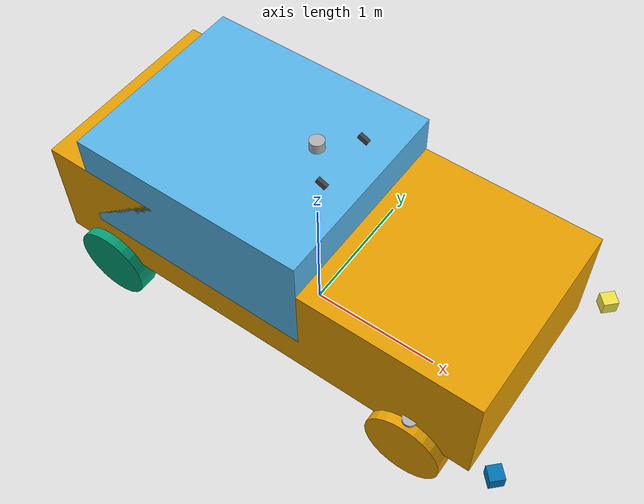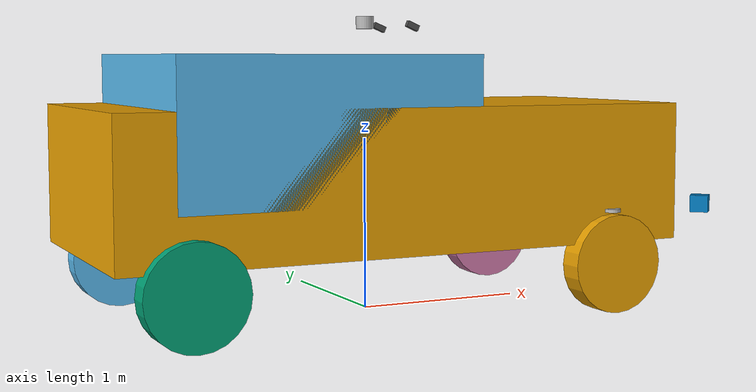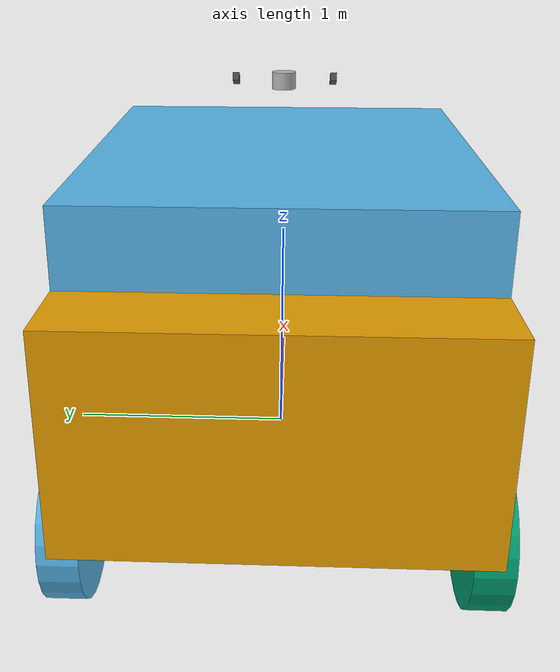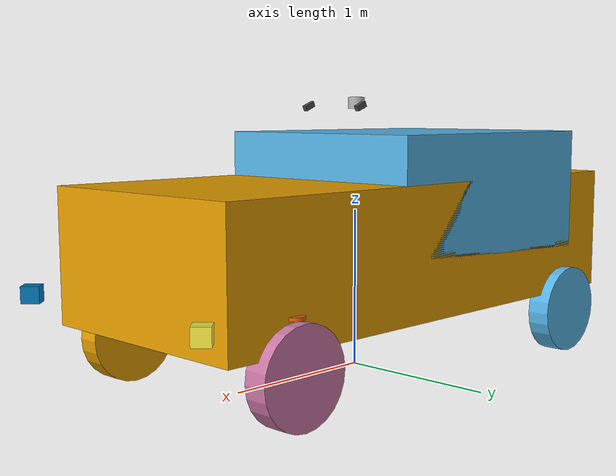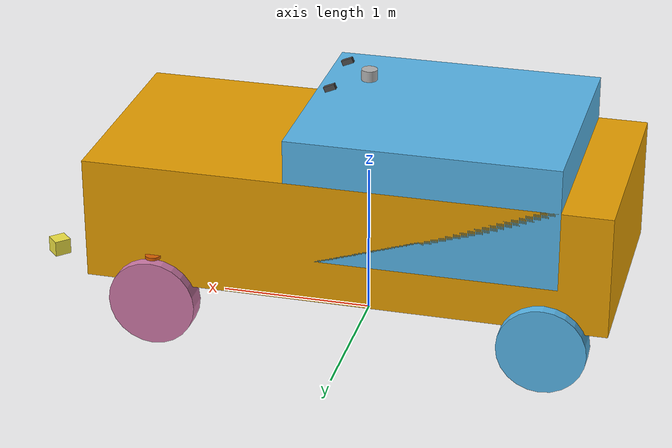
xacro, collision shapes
<?xml version="1.0" ?>
<robot name="atlascar2" version="1.0">
  <link name="base_link">
    <inertial>
      <origin xyz="0.0 0.0 0.0" rpy="0.0 0.0 0.0"/>
      <mass value="2.0"/>
      <inertia ixx="1.0" ixy="0.0" ixz="0.0" iyy="1.0" iyz="0.0" izz="1.0"/>
    </inertial>
    <visual>
      <origin xyz="1.7375 -0.8875000000000001 -0.235" rpy="0.0 0.0 1.5707963267948966"/>
      <geometry>
        <mesh filename="file:////home/nel/catkin_ws/src/calibration/robots/atlascar2/atlascar2_description/meshes/atlascar2_nowheels.dae"/>
      </geometry>
    </visual>
    <collision>
      <origin xyz="0.0 0.0 0.52" rpy="0 0 0"/>
      <geometry>
        <box size="3.375 1.475 0.805"/>
      </geometry>
    </collision>
  </link>
  <link name="top_collision">
    <collision>
      <origin xyz="-0.49642857142857144 0.0 0.0" rpy="0 0 0"/>
      <geometry>
        <box size="1.7375 1.475 0.805"/>
      </geometry>
    </collision>
  </link>
  <joint name="base_link_to_top_collision" type="fixed">
    <origin xyz="0.0 0.0 0.805" rpy="0.0 0.0 0.0"/>
    <parent link="base_link"/>
    <child link="top_collision"/>
  </joint>
  <link name="base_footprint">
    <collision>
      <origin xyz="0.0 0.0 0.0" rpy="0 0 0"/>
      <geometry>
        <sphere radius="1e-08"/>
      </geometry>
    </collision>
  </link>
  <joint name="base_footprint_joint" type="fixed">
    <origin xyz="0.0 0.0 0.285" rpy="0.0 0.0 0.0"/>
    <parent link="base_footprint"/>
    <child link="base_link"/>
  </joint>
  <link name="top_right_camera">
    <inertial>
      <mass value="0.085"/>
      <inertia ixx="1e-06" ixy="0.0" ixz="0.0" iyy="1e-06" iyz="0.0" izz="1e-06"/>
    </inertial>
    <visual>
      <origin xyz="0.0 0.0 0.0" rpy="0.0 0.0 0.0"/>
      <geometry>
        <box size="0.0754 0.029 0.035"/>
      </geometry>
      <material name="dark_grey"/>
    </visual>
    <collision>
      <origin xyz="0.0 0.0 0.0" rpy="0.0 0.0 0.0"/>
      <geometry>
        <box size="0.0754 0.029 0.035"/>
      </geometry>
    </collision>
  </link>
  <link name="top_right_camera_optical"/>
  <joint name="top_right_camera_optical_joint" type="fixed">
    <origin xyz="0.0 0.0 0.0" rpy="-1.570796 0.0 -1.570796"/>
    <parent link="top_right_camera"/>
    <child link="top_right_camera_optical"/>
  </joint>
  <gazebo reference="top_right_camera_optical">
    <material>Gazebo/Grey</material>
    <sensor name="top_right_camera" type="camera">
      <update_rate>120</update_rate>
      <camera name="top_right_camera">
        <pose>0 0 0 0 -1.5707 1.5707</pose>
        <horizontal_fov>1.0471975512</horizontal_fov>
        <image>
          <width>1272</width>
          <height>1016</height>
          <format>R8G8B8</format>
        </image>
        <clip>
          <near>0.5</near>
          <far>300</far>
        </clip>
        <noise>
          <type>gaussian</type>
          <mean>0.0</mean>
          <stddev>0.007</stddev>
        </noise>
      </camera>
      <plugin filename="libgazebo_ros_camera.so" name="camera_controller">
        <alwaysOn>true</alwaysOn>
        <updateRate>120</updateRate>
        <cameraName>top_right_camera</cameraName>
        <imageTopicName>image_raw</imageTopicName>
        <cameraInfoTopicName>camera_info</cameraInfoTopicName>
        <frameName>top_right_camera_optical</frameName>
        <hackBaseline>0.07</hackBaseline>
        <distortionK1>0.0</distortionK1>
        <distortionK2>0.0</distortionK2>
        <distortionK3>0.0</distortionK3>
        <distortionT1>0.0</distortionT1>
        <distortionT2>0.0</distortionT2>
      </plugin>
    </sensor>
  </gazebo>
  <joint name="{parent}_to_top_right_camera" type="fixed">
    <origin xyz="0.2001221309726634 -0.21610799787967408 1.3694008135553515" rpy="-0.00033517103954637626 0.4008436654743302 -0.00044685990488837183"/>
    <parent link="base_link"/>
    <child link="top_right_camera"/>
  </joint>
  <link name="top_left_camera">
    <inertial>
      <mass value="0.085"/>
      <inertia ixx="1e-06" ixy="0.0" ixz="0.0" iyy="1e-06" iyz="0.0" izz="1e-06"/>
    </inertial>
    <visual>
      <origin xyz="0.0 0.0 0.0" rpy="0.0 0.0 0.0"/>
      <geometry>
        <box size="0.0754 0.029 0.035"/>
      </geometry>
      <material name="dark_grey"/>
    </visual>
    <collision>
      <origin xyz="0.0 0.0 0.0" rpy="0.0 0.0 0.0"/>
      <geometry>
        <box size="0.0754 0.029 0.035"/>
      </geometry>
    </collision>
  </link>
  <link name="top_left_camera_optical"/>
  <joint name="top_left_camera_optical_joint" type="fixed">
    <origin xyz="0.0 0.0 0.0" rpy="-1.570796 0.0 -1.570796"/>
    <parent link="top_left_camera"/>
    <child link="top_left_camera_optical"/>
  </joint>
  <gazebo reference="top_left_camera_optical">
    <material>Gazebo/Grey</material>
    <sensor name="top_left_camera" type="camera">
      <update_rate>120</update_rate>
      <camera name="top_left_camera">
        <pose>0 0 0 0 -1.5707 1.5707</pose>
        <horizontal_fov>1.0471975512</horizontal_fov>
        <image>
          <width>1272</width>
          <height>1016</height>
          <format>R8G8B8</format>
        </image>
        <clip>
          <near>0.5</near>
          <far>300</far>
        </clip>
        <noise>
          <type>gaussian</type>
          <mean>0.0</mean>
          <stddev>0.007</stddev>
        </noise>
      </camera>
      <plugin filename="libgazebo_ros_camera.so" name="camera_controller">
        <alwaysOn>true</alwaysOn>
        <updateRate>120</updateRate>
        <cameraName>top_left_camera</cameraName>
        <imageTopicName>image_raw</imageTopicName>
        <cameraInfoTopicName>camera_info</cameraInfoTopicName>
        <frameName>top_left_camera_optical</frameName>
        <hackBaseline>0.07</hackBaseline>
        <distortionK1>0.0</distortionK1>
        <distortionK2>0.0</distortionK2>
        <distortionK3>0.0</distortionK3>
        <distortionT1>0.0</distortionT1>
        <distortionT2>0.0</distortionT2>
      </plugin>
    </sensor>
  </gazebo>
  <joint name="{parent}_to_top_left_camera" type="fixed">
    <origin xyz="0.20154699446691582 0.22553233689317445 1.368941444270171" rpy="-0.00033785773814485546 0.400753678202867 -0.0010168019601629586"/>
    <parent link="base_link"/>
    <child link="top_left_camera"/>
  </joint>
  <joint name="top_laser_base_mount_joint" type="fixed">
    <origin xyz="0.0018114097858342693 0.006131485845022701 1.3555173396460185" rpy="0.0010523513027342205 -0.004039523504586624 -0.0014120572320113396"/>
    <parent link="base_link"/>
    <child link="top_laser_base_link"/>
  </joint>
  <link name="top_laser_base_link">
    <inertial>
      <origin xyz="0.0 0.0 0.03585" rpy="0 0 0"/>
      <mass value="0.83"/>
      <inertia ixx="0.000908059425" ixy="0.0" ixz="0.0" iyy="0.000908059425" iyz="0.0" izz="0.0011049624"/>
    </inertial>
    <visual>
      <geometry>
        <mesh filename="package://velodyne_description/meshes/VLP16_base_1.dae"/>
      </geometry>
    </visual>
    <visual>
      <geometry>
        <mesh filename="package://velodyne_description/meshes/VLP16_base_2.dae"/>
      </geometry>
    </visual>
    <collision>
      <origin xyz="0.0 0.0 0.03585" rpy="0.0 0.0 0.0"/>
      <geometry>
        <cylinder radius="0.0516" length="0.0717"/>
      </geometry>
    </collision>
  </link>
  <joint name="top_laser_base_scan_joint" type="fixed">
    <origin xyz="0.0 0.0 0.0377" rpy="0.0 0.0 0.0"/>
    <parent link="top_laser_base_link"/>
    <child link="top_laser"/>
  </joint>
  <link name="top_laser">
    <inertial>
      <origin xyz="0.0 0.0 0.0" rpy="0 0 0"/>
      <mass value="0.01"/>
      <inertia ixx="1e-07" ixy="0.0" ixz="0.0" iyy="1e-07" iyz="0.0" izz="1e-07"/>
    </inertial>
    <visual>
      <origin xyz="0.0 0.0 -0.0377" rpy="0 0 0"/>
      <geometry>
        <mesh filename="package://velodyne_description/meshes/VLP16_scan.dae"/>
      </geometry>
    </visual>
  </link>
  <gazebo reference="top_laser">
    <sensor name="top_laser-VLP16" type="ray">
      <pose>0 0 0 0 0 0</pose>
      <visualize>false</visualize>
      <update_rate>10</update_rate>
      <ray>
        <scan>
          <horizontal>
            <samples>1875</samples>
            <resolution>1</resolution>
            <min_angle>-3.141592653589793</min_angle>
            <max_angle>3.141592653589793</max_angle>
          </horizontal>
          <vertical>
            <samples>16</samples>
            <resolution>1</resolution>
            <min_angle>-0.2617993877991494</min_angle>
            <max_angle> 0.2617993877991494</max_angle>
          </vertical>
        </scan>
        <range>
          <min>0.3</min>
          <max>131.0</max>
          <resolution>0.001</resolution>
        </range>
        <noise>
          <type>gaussian</type>
          <mean>0.0</mean>
          <stddev>0.0</stddev>
        </noise>
      </ray>
      <plugin filename="libgazebo_ros_velodyne_laser.so" name="gazebo_ros_laser_controller">
        <topicName>top_laser/cloud</topicName>
        <frameName>top_laser</frameName>
        <organize_cloud>False</organize_cloud>
        <min_range>0.9</min_range>
        <max_range>130.0</max_range>
        <gaussianNoise>0.008</gaussianNoise>
      </plugin>
    </sensor>
  </gazebo>
  <link name="front_steer_link">
    <inertial>
      <origin xyz="0.0 0.0 0.0" rpy="0.0 0.0 0.0"/>
      <mass value="0.3"/>
      <inertia ixx="0.02" ixy="0.0" ixz="0.0" iyy="0.002" iyz="0.0" izz="0.02"/>
    </inertial>
    <collision>
      <origin xyz="0.0 0.0 0.0" rpy="0.0 0.0 0.0"/>
      <geometry>
        <cylinder radius="0.05" length="0.02"/>
      </geometry>
    </collision>
  </link>
  <joint name="front_steer_joint" type="revolute">
    <origin xyz="1.2375 0.0 0.305" rpy="0.0 0.0 0.0"/>
    <axis xyz="0.0 0.0 1.0"/>
    <parent link="base_link"/>
    <child link="front_steer_link"/>
    <limit effort="15.0" lower="-3.141592653589793" upper="3.141592653589793" velocity="5.0"/>
    <dynamics damping="0.0" friction="0.0"/>
  </joint>
  <transmission name="front_steer_joint_trans">
    <type>transmission_interface/SimpleTransmission</type>
    <actuator name="front_steer_joint_motor"/>
    <joint name="front_steer_joint">
      <hardwareInterface>hardware_interface/PositionJointInterface</hardwareInterface>
    </joint>
  </transmission>
  <gazebo reference="front_steer_link">
    <material>Gazebo/Yellow</material>
  </gazebo>
  <link name="rear_wheel_link">
    <inertial>
      <origin xyz="0.0 0.0 0.0" rpy="0.0 0.0 0.0"/>
      <mass value="0.3"/>
      <inertia ixx="0.02" ixy="0.0" ixz="0.0" iyy="0.002" iyz="0.0" izz="0.02"/>
    </inertial>
    <collision>
      <origin xyz="0.0 0.0 0.0" rpy="0.0 0.0 0.0"/>
      <geometry>
        <cylinder radius="0.0028499999999999997" length="0.00145"/>
      </geometry>
    </collision>
  </link>
  <joint name="rear_wheel_joint" type="continuous">
    <origin xyz="-1.2375 0.0 0.0" rpy="-1.5707963267948966 0.0 -1.5707963267948966"/>
    <axis xyz="1.0 0.0 0.0"/>
    <parent link="base_link"/>
    <child link="rear_wheel_link"/>
    <dynamics damping="0.0" friction="0.0"/>
  </joint>
  <transmission name="rear_wheel_joint_trans">
    <type>transmission_interface/SimpleTransmission</type>
    <actuator name="rear_wheel_joint_motor"/>
    <joint name="rear_wheel_joint">
      <hardwareInterface>hardware_interface/VelocityJointInterface</hardwareInterface>
    </joint>
  </transmission>
  <link name="left_laser">
    <inertial>
      <origin xyz="0.0 0.0 0.0" rpy="0 0 0"/>
      <mass value="1.1"/>
      <inertia ixx="0.00307156543804" ixy="0.0" ixz="0.0" iyy="0.0031284904152700005" iyz="0.0" izz="0.00196432421427"/>
    </inertial>
    <visual>
      <origin xyz="0.0 0.0 0.0" rpy="0.0 0.0 0.0"/>
      <geometry>
        <mesh filename="package://lms1xx/meshes/sick-lms1xx.dae"/>
      </geometry>
    </visual>
    <collision>
      <origin xyz="0.0 0.0 -0.05" rpy="0.0 0.0 0.0"/>
      <geometry>
        <box size="0.105 0.1 0.1"/>
      </geometry>
    </collision>
  </link>
  <gazebo reference="left_laser">
    <turnGravityOff>true</turnGravityOff>
    <sensor name="left_laser" type="ray">
      <pose>0 0 0 0 0 0</pose>
      <visualize>false</visualize>
      <update_rate>50</update_rate>
      <ray>
        <scan>
          <horizontal>
            <samples>720</samples>
            <resolution>1</resolution>
            <min_angle>-2.35619</min_angle>
            <max_angle>2.35619</max_angle>
          </horizontal>
        </scan>
        <range>
          <min>0.1</min>
          <max>30.0</max>
          <resolution>0.01</resolution>
        </range>
        <noise>
          <type>gaussian</type>
          <mean>0.0</mean>
          <stddev>0.001</stddev>
        </noise>
      </ray>
      <plugin filename="libgazebo_ros_laser.so" name="gazebo_ros_laser">
        <topicName>/left_laser/scan</topicName>
        <frameName>left_laser</frameName>
        <robotNamespace>/</robotNamespace>
      </plugin>
    </sensor>
  </gazebo>
  <joint name="{parent}_to_left_laser" type="fixed">
    <origin xyz="1.8575 0.76 0.37" rpy="0.0 0.0 0.7854"/>
    <parent link="base_link"/>
    <child link="left_laser"/>
  </joint>
  <link name="right_laser">
    <inertial>
      <origin xyz="0.0 0.0 0.0" rpy="0 0 0"/>
      <mass value="1.1"/>
      <inertia ixx="0.00307156543804" ixy="0.0" ixz="0.0" iyy="0.0031284904152700005" iyz="0.0" izz="0.00196432421427"/>
    </inertial>
    <visual>
      <origin xyz="0.0 0.0 0.0" rpy="0.0 0.0 0.0"/>
      <geometry>
        <mesh filename="package://lms1xx/meshes/sick-lms1xx.dae"/>
      </geometry>
    </visual>
    <collision>
      <origin xyz="0.0 0.0 -0.05" rpy="0.0 0.0 0.0"/>
      <geometry>
        <box size="0.105 0.1 0.1"/>
      </geometry>
    </collision>
  </link>
  <gazebo reference="right_laser">
    <turnGravityOff>true</turnGravityOff>
    <sensor name="right_laser" type="ray">
      <pose>0 0 0 0 0 0</pose>
      <visualize>false</visualize>
      <update_rate>50</update_rate>
      <ray>
        <scan>
          <horizontal>
            <samples>720</samples>
            <resolution>1</resolution>
            <min_angle>-2.35619</min_angle>
            <max_angle>2.35619</max_angle>
          </horizontal>
        </scan>
        <range>
          <min>0.1</min>
          <max>30.0</max>
          <resolution>0.01</resolution>
        </range>
        <noise>
          <type>gaussian</type>
          <mean>0.0</mean>
          <stddev>0.001</stddev>
        </noise>
      </ray>
      <plugin filename="libgazebo_ros_laser.so" name="gazebo_ros_laser">
        <topicName>/right_laser/scan</topicName>
        <frameName>right_laser</frameName>
        <robotNamespace>/</robotNamespace>
      </plugin>
    </sensor>
  </gazebo>
  <joint name="{parent}_to_right_laser" type="fixed">
    <origin xyz="1.8575 -0.76 0.37" rpy="0.0 0.0 -0.7854"/>
    <parent link="base_link"/>
    <child link="right_laser"/>
  </joint>
  <link name="front_right_steer_link">
    <inertial>
      <origin xyz="0.0 0.0 0.0" rpy="0.0 0.0 0.0"/>
      <mass value="0.3"/>
      <inertia ixx="0.02" ixy="0.0" ixz="0.0" iyy="0.002" iyz="0.0" izz="0.02"/>
    </inertial>
    <collision>
      <origin xyz="0.0 0.0 0.0" rpy="0.0 0.0 0.0"/>
      <geometry>
        <cylinder radius="0.05" length="0.02"/>
      </geometry>
    </collision>
  </link>
  <joint name="front_right_steer_joint" type="revolute">
    <origin xyz="1.2375 0.7375 0.305" rpy="0.0 0.0 0.0"/>
    <axis xyz="0.0 0.0 1.0"/>
    <parent link="base_link"/>
    <child link="front_right_steer_link"/>
    <limit effort="15.0" lower="-3.141592653589793" upper="3.141592653589793" velocity="5.0"/>
    <dynamics damping="0.0" friction="0.0"/>
  </joint>
  <link name="front_right_wheel_link">
    <inertial>
      <origin xyz="0.0 0.0 0.0" rpy="0.0 0.0 0.0"/>
      <mass value="0.3"/>
      <inertia ixx="0.02" ixy="0.0" ixz="0.0" iyy="0.002" iyz="0.0" izz="0.02"/>
    </inertial>
    <visual>
      <origin xyz="0.0 0.0 0.0" rpy="0.0 0.0 0.0"/>
      <geometry>
        <mesh filename="file:////home/nel/catkin_ws/src/calibration/robots/atlascar2/atlascar2_description/meshes/atlascar2_wheel.dae"/>
      </geometry>
    </visual>
    <collision>
      <origin xyz="0.0 0.0 0.0" rpy="-1.5707963267948966 0.0 -1.5707963267948966"/>
      <geometry>
        <cylinder radius="0.285" length="0.145"/>
      </geometry>
    </collision>
  </link>
  <joint name="front_right_wheel_joint" type="continuous">
    <origin xyz="0.0 0.0 -0.305" rpy="-1.5707963267948966 0.0 -1.5707963267948966"/>
    <axis xyz="-1.0 0.0 0.0"/>
    <parent link="front_right_steer_link"/>
    <child link="front_right_wheel_link"/>
    <dynamics damping="0.0" friction="0.0"/>
  </joint>
  <transmission name="front_right_steer_joint_trans">
    <type>transmission_interface/SimpleTransmission</type>
    <actuator name="front_right_steer_joint_motor"/>
    <joint name="front_right_steer_joint">
      <hardwareInterface>hardware_interface/EffortJointInterface</hardwareInterface>
    </joint>
  </transmission>
  <transmission name="front_right_wheel_joint_trans">
    <type>transmission_interface/SimpleTransmission</type>
    <actuator name="front_right_wheel_joint_motor"/>
    <joint name="front_right_wheel_joint">
      <hardwareInterface>hardware_interface/EffortJointInterface</hardwareInterface>
    </joint>
  </transmission>
  <link name="front_left_steer_link">
    <inertial>
      <origin xyz="0.0 0.0 0.0" rpy="0.0 0.0 0.0"/>
      <mass value="0.3"/>
      <inertia ixx="0.02" ixy="0.0" ixz="0.0" iyy="0.002" iyz="0.0" izz="0.02"/>
    </inertial>
    <collision>
      <origin xyz="0.0 0.0 0.0" rpy="0.0 0.0 0.0"/>
      <geometry>
        <cylinder radius="0.05" length="0.02"/>
      </geometry>
    </collision>
  </link>
  <joint name="front_left_steer_joint" type="revolute">
    <origin xyz="1.2375 -0.7375 0.305" rpy="0.0 0.0 0.0"/>
    <axis xyz="0.0 0.0 1.0"/>
    <parent link="base_link"/>
    <child link="front_left_steer_link"/>
    <limit effort="15.0" lower="-3.141592653589793" upper="3.141592653589793" velocity="5.0"/>
    <dynamics damping="0.0" friction="0.0"/>
  </joint>
  <link name="front_left_wheel_link">
    <inertial>
      <origin xyz="0.0 0.0 0.0" rpy="0.0 0.0 0.0"/>
      <mass value="0.3"/>
      <inertia ixx="0.02" ixy="0.0" ixz="0.0" iyy="0.002" iyz="0.0" izz="0.02"/>
    </inertial>
    <visual>
      <origin xyz="0.0 0.0 0.0" rpy="0.0 0.0 0.0"/>
      <geometry>
        <mesh filename="file:////home/nel/catkin_ws/src/calibration/robots/atlascar2/atlascar2_description/meshes/atlascar2_wheel.dae"/>
      </geometry>
    </visual>
    <collision>
      <origin xyz="0.0 0.0 0.0" rpy="-1.5707963267948966 0.0 1.5707963267948966"/>
      <geometry>
        <cylinder radius="0.285" length="0.145"/>
      </geometry>
    </collision>
  </link>
  <joint name="front_left_wheel_joint" type="continuous">
    <origin xyz="0.0 0.0 -0.305" rpy="-1.5707963267948966 0.0 1.5707963267948966"/>
    <axis xyz="1.0 0.0 0.0"/>
    <parent link="front_left_steer_link"/>
    <child link="front_left_wheel_link"/>
    <dynamics damping="0.0" friction="0.0"/>
  </joint>
  <transmission name="front_left_steer_joint_trans">
    <type>transmission_interface/SimpleTransmission</type>
    <actuator name="front_left_steer_joint_motor"/>
    <joint name="front_left_steer_joint">
      <hardwareInterface>hardware_interface/EffortJointInterface</hardwareInterface>
    </joint>
  </transmission>
  <transmission name="front_left_wheel_joint_trans">
    <type>transmission_interface/SimpleTransmission</type>
    <actuator name="front_left_wheel_joint_motor"/>
    <joint name="front_left_wheel_joint">
      <hardwareInterface>hardware_interface/EffortJointInterface</hardwareInterface>
    </joint>
  </transmission>
  <link name="rear_right_wheel_link">
    <inertial>
      <origin xyz="0.0 0.0 0.0" rpy="0.0 0.0 0.0"/>
      <mass value="0.3"/>
      <inertia ixx="0.02" ixy="0.0" ixz="0.0" iyy="0.002" iyz="0.0" izz="0.02"/>
    </inertial>
    <visual>
      <origin xyz="0.0 0.0 0.0" rpy="0.0 0.0 0.0"/>
      <geometry>
        <mesh filename="file:////home/nel/catkin_ws/src/calibration/robots/atlascar2/atlascar2_description/meshes/atlascar2_wheel.dae"/>
      </geometry>
    </visual>
    <collision>
      <origin xyz="0.0 0.0 0.0" rpy="-1.5707963267948966 0.0 -1.5707963267948966"/>
      <geometry>
        <cylinder radius="0.285" length="0.145"/>
      </geometry>
    </collision>
  </link>
  <joint name="rear_right_wheel_joint" type="continuous">
    <origin xyz="-1.2875 0.7375 0.0" rpy="-1.5707963267948966 0.0 -1.5707963267948966"/>
    <axis xyz="-1.0 0.0 0.0"/>
    <parent link="base_link"/>
    <child link="rear_right_wheel_link"/>
    <dynamics damping="0.0" friction="0.0"/>
  </joint>
  <transmission name="rear_right_wheel_joint_trans">
    <type>transmission_interface/SimpleTransmission</type>
    <actuator name="rear_right_wheel_joint_motor"/>
    <joint name="rear_right_wheel_joint">
      <hardwareInterface>hardware_interface/EffortJointInterface</hardwareInterface>
    </joint>
  </transmission>
  <link name="rear_left_wheel_link">
    <inertial>
      <origin xyz="0.0 0.0 0.0" rpy="0.0 0.0 0.0"/>
      <mass value="0.3"/>
      <inertia ixx="0.02" ixy="0.0" ixz="0.0" iyy="0.002" iyz="0.0" izz="0.02"/>
    </inertial>
    <visual>
      <origin xyz="0.0 0.0 0.0" rpy="0.0 0.0 0.0"/>
      <geometry>
        <mesh filename="file:////home/nel/catkin_ws/src/calibration/robots/atlascar2/atlascar2_description/meshes/atlascar2_wheel.dae"/>
      </geometry>
    </visual>
    <collision>
      <origin xyz="0.0 0.0 0.0" rpy="-1.5707963267948966 0.0 1.5707963267948966"/>
      <geometry>
        <cylinder radius="0.285" length="0.145"/>
      </geometry>
    </collision>
  </link>
  <joint name="rear_left_wheel_joint" type="continuous">
    <origin xyz="-1.2875 -0.7375 0.0" rpy="-1.5707963267948966 0.0 1.5707963267948966"/>
    <axis xyz="1.0 0.0 0.0"/>
    <parent link="base_link"/>
    <child link="rear_left_wheel_link"/>
    <dynamics damping="0.0" friction="0.0"/>
  </joint>
  <transmission name="rear_left_wheel_joint_trans">
    <type>transmission_interface/SimpleTransmission</type>
    <actuator name="rear_left_wheel_joint_motor"/>
    <joint name="rear_left_wheel_joint">
      <hardwareInterface>hardware_interface/EffortJointInterface</hardwareInterface>
    </joint>
  </transmission>
  <gazebo>
    <plugin filename="libgazebo_ros_control.so" name="gazebo_ros_control">
      <robotSimType>steer_bot_hardware_gazebo/SteerBotHardwareGazebo</robotSimType>
    </plugin>
  </gazebo>
  <gazebo reference="base_footprint">
    <material>Gazebo/Purple</material>
  </gazebo>
</robot>
